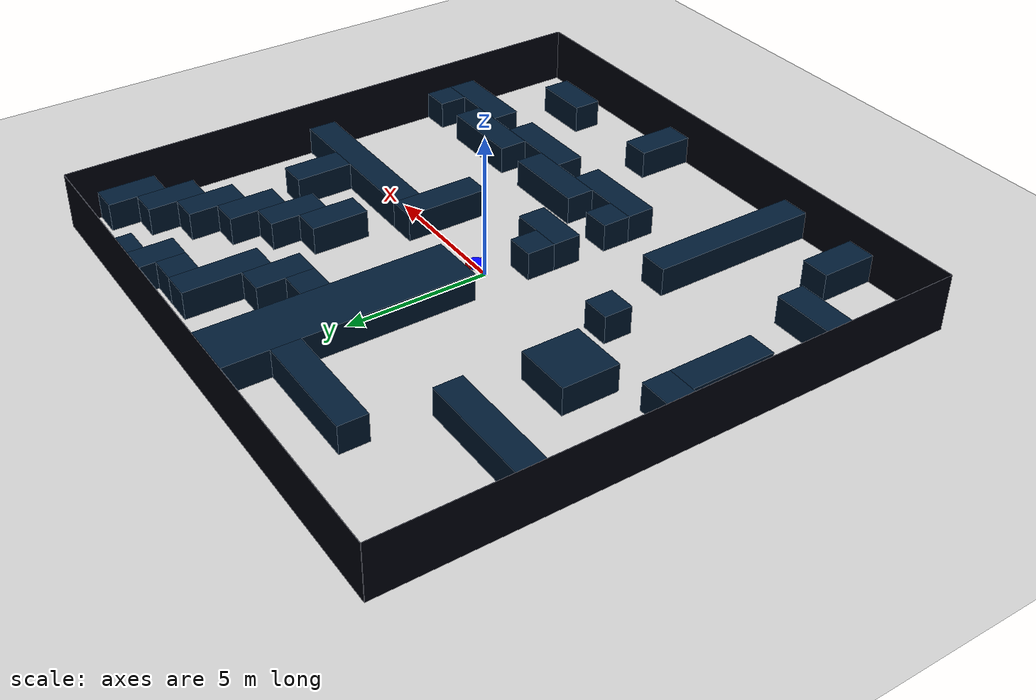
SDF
<?xml version="1.0"?>
<sdf version='1.8'>
    <world name='maze'>
        <plugin
            filename="gz-sim-sensors-system"
            name="gz::sim::systems::Sensors">
            <render_engine>ogre2</render_engine>
        </plugin>
        <physics name='1ms' type='ignored'>
            <max_step_size>0.003</max_step_size>
            <real_time_factor>1</real_time_factor>
            <real_time_update_rate>1000</real_time_update_rate>
        </physics>
        <plugin name='gz::sim::systems::Physics' filename='gz-sim-physics-system' />
        <plugin name='gz::sim::systems::UserCommands' filename='gz-sim-user-commands-system' />
        <plugin name='gz::sim::systems::SceneBroadcaster' filename='gz-sim-scene-broadcaster-system' />
        <plugin name='gz::sim::systems::Contact' filename='gz-sim-contact-system' />
        <light name='sun' type='directional'>
            <cast_shadows>1</cast_shadows>
            <pose>0 0 10 0 -0 0</pose>
            <diffuse>0.8 0.8 0.8 1</diffuse>
            <specular>0.2 0.2 0.2 1</specular>
            <attenuation>
                <range>1000</range>
                <constant>0.90000000000000002</constant>
                <linear>0.01</linear>
                <quadratic>0.001</quadratic>
            </attenuation>
            <direction>-0.5 0.1 -0.9</direction>
            <spot>
                <inner_angle>0</inner_angle>
                <outer_angle>0</outer_angle>
                <falloff>0</falloff>
            </spot>
        </light>
        <gravity>0 0 -9.8</gravity>
        <magnetic_field>6e-06 2.3e-05 -4.2e-05</magnetic_field>
        <atmosphere type='adiabatic' />
        <scene>
            <ambient>0.4 0.4 0.4 1</ambient>
            <background>0.7 0.7 0.7 1</background>
            <shadows>1</shadows>
        </scene>
        <model name='ground_plane'>
            <static>1</static>
            <link name='link'>
                <collision name='collision'>
                    <geometry>
                        <plane>
                            <normal>0 0 1</normal>
                            <size>100 100</size>
                        </plane>
                    </geometry>
                    <surface>
                        <friction>
                            <ode />
                        </friction>
                        <bounce />
                        <contact />
                    </surface>
                </collision>
                <visual name='visual'>
                    <geometry>
                        <plane>
                            <normal>0 0 1</normal>
                            <size>100 100</size>
                        </plane>
                    </geometry>
                    <material>
                        <ambient>0.8 0.8 0.8 1</ambient>
                        <diffuse>0.8 0.8 0.8 1</diffuse>
                        <specular>0.8 0.8 0.8 1</specular>
                    </material>
                    <plugin name='__default__' filename='__default__' />
                </visual>
            </link>
            <plugin name='__default__' filename='__default__' />
            <pose>0 0 0 0 -0 0</pose>
        </model>

        <model name='border'>
            <pose>0 0 1 0 0 0</pose>
            <static>true</static>
            <link name='wall1'>
                <pose>-10.005 0 0 0 0 0</pose>
                <static>true</static>
                <collision name='wall1_collision'>
                    <geometry>
                        <box>
                            <size>0.01 20 2</size>
                        </box>
                    </geometry>
                </collision>
                <visual name='wall1_visual'>
                    <geometry>
                        <box>
                            <size>0.01 20 2</size>
                        </box>
                    </geometry>
                    <material>
                        <ambient>0.1 0.1 0.1 1</ambient>
                        <diffuse>0 0.01 0.05 1</diffuse>
                        <specular>0 0.01 0.05 1</specular>
                    </material>
                </visual>
            </link>
            <link name='wall2'>
                <pose>10.005 0 0 0 0 0</pose>
                <static>true</static>
                <collision name='wall2_collision'>
                    <geometry>
                        <box>
                            <size>0.01 20 2</size>
                        </box>
                    </geometry>
                </collision>
                <visual name='wall2_visual'>
                    <geometry>
                        <box>
                            <size>0.01 20 2</size>
                        </box>
                    </geometry>
                    <material>
                        <ambient>0.1 0.1 0.1 1</ambient>
                        <diffuse>0 0.01 0.05 1</diffuse>
                        <specular>0 0.01 0.05 1</specular>
                    </material>
                </visual>
            </link>
            <link name='wall3'>
                <pose>0 10.005 0 0 0 0</pose>
                <static>true</static>
                <collision name='wall3_collision'>
                    <geometry>
                        <box>
                            <size>20 0.01 2</size>
                        </box>
                    </geometry>
                </collision>
                <visual name='wall3_visual'>
                    <geometry>
                        <box>
                            <size>20 0.01 2</size>
                        </box>
                    </geometry>
                    <material>
                        <ambient>0.1 0.1 0.1 1</ambient>
                        <diffuse>0 0.01 0.05 1</diffuse>
                        <specular>0 0.01 0.05 1</specular>
                    </material>
                </visual>
            </link>
            <link name='wall4'>
                <pose>0 -10.005 0 0 0 0</pose>
                <static>true</static>
                <collision name='wall4_collision'>
                    <geometry>
                        <box>
                            <size>20 0.01 2</size>
                        </box>
                    </geometry>
                    <material>
                        <ambient>0.1 0.1 0.1 1</ambient>
                        <diffuse>0 0.01 0.05 1</diffuse>
                        <specular>0 0.01 0.05 1</specular>
                    </material>
                </collision>
                <visual name='wall4_visual'>
                    <geometry>
                        <box>
                            <size>20 0.01 2</size>
                        </box>
                    </geometry>
                    <material>
                        <ambient>0.1 0.1 0.1 1</ambient>
                        <diffuse>0 0.01 0.05 1</diffuse>
                        <specular>0 0.01 0.05 1</specular>
                    </material>
                </visual>
            </link>
        </model>

        <model name='obstacles'>
            <pose>0 0 0.5 0 0 0</pose>
            <static>true</static>
            <link name='wall1'>
                <pose>-6.5 -9 0 0 0 0</pose>
                <static>true</static>
                <collision name='wall1_collision'>
                    <geometry>
                        <box>
                            <size>1 2 1</size>
                        </box>
                    </geometry>
                </collision>
                <visual name='wall1_visual'>
                    <geometry>
                        <box>
                            <size>1 2 1</size>
                        </box>
                    </geometry>
                    <material>
                        <ambient>0.1 0.1 0.1 1</ambient>
                        <diffuse>0 0.1 0.2 1</diffuse>
                        <specular>0 0.01 0.05 1</specular>
                    </material>
                </visual>
            </link>

            <link name='wall2'>
                <pose>-8.5 -6.5 0 0 0 0</pose>
                <static>true</static>
                <collision name='wall2_collision'>
                    <geometry>
                        <box>
                            <size>3 1 1</size>
                        </box>
                    </geometry>
                </collision>
                <visual name='wall2_visual'>
                    <geometry>
                        <box>
                            <size>3 1 1</size>
                        </box>
                    </geometry>
                    <material>
                        <ambient>0.1 0.1 0.1 1</ambient>
                        <diffuse>0 0.1 0.2 1</diffuse>
                        <specular>0 0.01 0.05 1</specular>
                    </material>
                </visual>
            </link>

            <link name='wall3'>
                <pose>-3.5 -7 0 0 0 0</pose>
                <static>true</static>
                <collision name='wall3_collision'>
                    <geometry>
                        <box>
                            <size>1 6 1</size>
                        </box>
                    </geometry>
                </collision>
                <visual name='wall3_visual'>
                    <geometry>
                        <box>
                            <size>1 6 1</size>
                        </box>
                    </geometry>
                    <material>
                        <ambient>0.1 0.1 0.1 1</ambient>
                        <diffuse>0 0.1 0.2 1</diffuse>
                        <specular>0 0.01 0.05 1</specular>
                    </material>
                </visual>
            </link>

            <link name='wall4'>
                <pose>2.5 -9 0 0 0 0</pose>
                <static>true</static>
                <collision name='wall4_collision'>
                    <geometry>
                        <box>
                            <size>1 2 1</size>
                        </box>
                    </geometry>
                </collision>
                <visual name='wall4_visual'>
                    <geometry>
                        <box>
                            <size>1 2 1</size>
                        </box>
                    </geometry>
                    <material>
                        <ambient>0.1 0.1 0.1 1</ambient>
                        <diffuse>0 0.1 0.2 1</diffuse>
                        <specular>0 0.01 0.05 1</specular>
                    </material>
                </visual>
            </link>

            <link name='wall5'>
                <pose>7 -8.5 0 0 0 0</pose>
                <static>true</static>
                <collision name='wall5_collision'>
                    <geometry>
                        <box>
                            <size>2 1 1</size>
                        </box>
                    </geometry>
                </collision>
                <visual name='wall5_visual'>
                    <geometry>
                        <box>
                            <size>2 1 1</size>
                        </box>
                    </geometry>
                    <material>
                        <ambient>0.1 0.1 0.1 1</ambient>
                        <diffuse>0 0.1 0.2 1</diffuse>
                        <specular>0 0.01 0.05 1</specular>
                    </material>
                </visual>
            </link>

            <link name='wall6'>
                <pose>-9 -0.5 0 0 0 0</pose>
                <static>true</static>
                <collision name='wall6_collision'>
                    <geometry>
                        <box>
                            <size>2 1 1</size>
                        </box>
                    </geometry>
                </collision>
                <visual name='wall6_visual'>
                    <geometry>
                        <box>
                            <size>2 1 1</size>
                        </box>
                    </geometry>
                    <material>
                        <ambient>0.1 0.1 0.1 1</ambient>
                        <diffuse>0 0.1 0.2 1</diffuse>
                        <specular>0 0.01 0.05 1</specular>
                    </material>
                </visual>
            </link>

            <link name='wall7'>
                <pose>-8.5 -2.5 0 0 0 0</pose>
                <static>true</static>
                <collision name='wall7_collision'>
                    <geometry>
                        <box>
                            <size>1 3 1</size>
                        </box>
                    </geometry>
                </collision>
                <visual name='wall7_visual'>
                    <geometry>
                        <box>
                            <size>1 3 1</size>
                        </box>
                    </geometry>
                    <material>
                        <ambient>0.1 0.1 0.1 1</ambient>
                        <diffuse>0 0.1 0.2 1</diffuse>
                        <specular>0 0.01 0.05 1</specular>
                    </material>
                </visual>
            </link>

            <link name='wall8'>
                <pose>-4.5 -1.5 0 0 0 0</pose>
                <static>true</static>
                <collision name='wall8_collision'>
                    <geometry>
                        <box>
                            <size>1 1 1</size>
                        </box>
                    </geometry>
                </collision>
                <visual name='wall8_visual'>
                    <geometry>
                        <box>
                            <size>1 1 1</size>
                        </box>
                    </geometry>
                    <material>
                        <ambient>0.1 0.1 0.1 1</ambient>
                        <diffuse>0 0.1 0.2 1</diffuse>
                        <specular>0 0.01 0.05 1</specular>
                    </material>
                </visual>
            </link>

            <link name='wall9'>
                <pose>-6 1 0 0 0 0</pose>
                <static>true</static>
                <collision name='wall9_collision'>
                    <geometry>
                        <box>
                            <size>2 2 1</size>
                        </box>
                    </geometry>
                </collision>
                <visual name='wall9_visual'>
                    <geometry>
                        <box>
                            <size>2 2 1</size>
                        </box>
                    </geometry>
                    <material>
                        <ambient>0.1 0.1 0.1 1</ambient>
                        <diffuse>0 0.1 0.2 1</diffuse>
                        <specular>0 0.01 0.05 1</specular>
                    </material>
                </visual>
            </link>

            <link name='wall10'>
                <pose>-7.5 4.5 0 0 0 0</pose>
                <static>true</static>
                <collision name='wall10_collision'>
                    <geometry>
                        <box>
                            <size>5 1 1</size>
                        </box>
                    </geometry>
                </collision>
                <visual name='wall10_visual'>
                    <geometry>
                        <box>
                            <size>5 1 1</size>
                        </box>
                    </geometry>
                    <material>
                        <ambient>0.1 0.1 0.1 1</ambient>
                        <diffuse>0 0.1 0.2 1</diffuse>
                        <specular>0 0.01 0.05 1</specular>
                    </material>
                </visual>
            </link>

            <link name='wall11'>
                <pose>-3 7.5 0 0 0 0</pose>
                <static>true</static>
                <collision name='wall11_collision'>
                    <geometry>
                        <box>
                            <size>4 1 1</size>
                        </box>
                    </geometry>
                </collision>
                <visual name='wall11_visual'>
                    <geometry>
                        <box>
                            <size>4 1 1</size>
                        </box>
                    </geometry>
                    <material>
                        <ambient>0.1 0.1 0.1 1</ambient>
                        <diffuse>0 0.1 0.2 1</diffuse>
                        <specular>0 0.01 0.05 1</specular>
                    </material>
                </visual>
            </link>
            <link name='wall12'>
                <pose>0 5.5 0 0 0 0</pose>
                <static>true</static>
                <collision name='wall12_collision'>
                    <geometry>
                        <box>
                            <size>2 9 1</size>
                        </box>
                    </geometry>
                </collision>
                <visual name='wall12_visual'>
                    <geometry>
                        <box>
                            <size>2 9 1</size>
                        </box>
                    </geometry>
                    <material>
                        <ambient>0.1 0.1 0.1 1</ambient>
                        <diffuse>0 0.1 0.2 1</diffuse>
                        <specular>0 0.01 0.05 1</specular>
                    </material>
                </visual>
            </link>

            <link name='wall13'>
                <pose>0 -2.5 0 0 0 0</pose>
                <static>true</static>
                <collision name='wall13_collision'>
                    <geometry>
                        <box>
                            <size>2 1 1</size>
                        </box>
                    </geometry>
                </collision>
                <visual name='wall13_visual'>
                    <geometry>
                        <box>
                            <size>2 1 1</size>
                        </box>
                    </geometry>
                    <material>
                        <ambient>0.1 0.1 0.1 1</ambient>
                        <diffuse>0 0.1 0.2 1</diffuse>
                        <specular>0 0.01 0.05 1</specular>
                    </material>
                </visual>
            </link>

            <link name='wall14'>
                <pose>-0.5 -1.5 0 0 0 0</pose>
                <static>true</static>
                <collision name='wall14_collision'>
                    <geometry>
                        <box>
                            <size>1 1 1</size>
                        </box>
                    </geometry>
                </collision>
                <visual name='wall14_visual'>
                    <geometry>
                        <box>
                            <size>1 1 1</size>
                        </box>
                    </geometry>
                    <material>
                        <ambient>0.1 0.1 0.1 1</ambient>
                        <diffuse>0 0.1 0.2 1</diffuse>
                        <specular>0 0.01 0.05 1</specular>
                    </material>
                </visual>
            </link>

            <link name='wall15'>
                <pose>-0.5 -4.5 0 0 0 0</pose>
                <static>true</static>
                <collision name='wall15_collision'>
                    <geometry>
                        <box>
                            <size>1 1 1</size>
                        </box>
                    </geometry>
                </collision>
                <visual name='wall15_visual'>
                    <geometry>
                        <box>
                            <size>1 1 1</size>
                        </box>
                    </geometry>
                    <material>
                        <ambient>0.1 0.1 0.1 1</ambient>
                        <diffuse>0 0.1 0.2 1</diffuse>
                        <specular>0 0.01 0.05 1</specular>
                    </material>
                </visual>
            </link>

            <link name='wall16'>
                <pose>0.5 -5.5 0 0 0 0</pose>
                <static>true</static>
                <collision name='wall16_collision'>
                    <geometry>
                        <box>
                            <size>3 1 1</size>
                        </box>
                    </geometry>
                </collision>
                <visual name='wall16_visual'>
                    <geometry>
                        <box>
                            <size>3 1 1</size>
                        </box>
                    </geometry>
                    <material>
                        <ambient>0.1 0.1 0.1 1</ambient>
                        <diffuse>0 0.1 0.2 1</diffuse>
                        <specular>0 0.01 0.05 1</specular>
                    </material>
                </visual>
            </link>

            <link name='wall17'>
                <pose>2.5 -4.5 0 0 0 0</pose>
                <static>true</static>
                <collision name='wall17_collision'>
                    <geometry>
                        <box>
                            <size>3 1 1</size>
                        </box>
                    </geometry>
                </collision>
                <visual name='wall17_visual'>
                    <geometry>
                        <box>
                            <size>3 1 1</size>
                        </box>
                    </geometry>
                    <material>
                        <ambient>0.1 0.1 0.1 1</ambient>
                        <diffuse>0 0.1 0.2 1</diffuse>
                        <specular>0 0.01 0.05 1</specular>
                    </material>
                </visual>
            </link>

            <link name='wall18'>
                <pose>4.5 -5.5 0 0 0 0</pose>
                <static>true</static>
                <collision name='wall18_collision'>
                    <geometry>
                        <box>
                            <size>3 1 1</size>
                        </box>
                    </geometry>
                </collision>
                <visual name='wall18_visual'>
                    <geometry>
                        <box>
                            <size>3 1 1</size>
                        </box>
                    </geometry>
                    <material>
                        <ambient>0.1 0.1 0.1 1</ambient>
                        <diffuse>0 0.1 0.2 1</diffuse>
                        <specular>0 0.01 0.05 1</specular>
                    </material>
                </visual>
            </link>

            <link name='wall19'>
                <pose>6.5 -4.5 0 0 0 0</pose>
                <static>true</static>
                <collision name='wall19_collision'>
                    <geometry>
                        <box>
                            <size>3 1 1</size>
                        </box>
                    </geometry>
                </collision>
                <visual name='wall19_visual'>
                    <geometry>
                        <box>
                            <size>3 1 1</size>
                        </box>
                    </geometry>
                    <material>
                        <ambient>0.1 0.1 0.1 1</ambient>
                        <diffuse>0 0.1 0.2 1</diffuse>
                        <specular>0 0.01 0.05 1</specular>
                    </material>
                </visual>
            </link>

            <link name='wall20'>
                <pose>8.5 -5.5 0 0 0 0</pose>
                <static>true</static>
                <collision name='wall20_collision'>
                    <geometry>
                        <box>
                            <size>3 1 1</size>
                        </box>
                    </geometry>
                </collision>
                <visual name='wall20_visual'>
                    <geometry>
                        <box>
                            <size>3 1 1</size>
                        </box>
                    </geometry>
                    <material>
                        <ambient>0.1 0.1 0.1 1</ambient>
                        <diffuse>0 0.1 0.2 1</diffuse>
                        <specular>0 0.01 0.05 1</specular>
                    </material>
                </visual>
            </link>

            <link name='wall21'>
                <pose>9.5 -4.5 0 0 0 0</pose>
                <static>true</static>
                <collision name='wall21_collision'>
                    <geometry>
                        <box>
                            <size>1 1 1</size>
                        </box>
                    </geometry>
                </collision>
                <visual name='wall21_visual'>
                    <geometry>
                        <box>
                            <size>1 1 1</size>
                        </box>
                    </geometry>
                    <material>
                        <ambient>0.1 0.1 0.1 1</ambient>
                        <diffuse>0 0.1 0.2 1</diffuse>
                        <specular>0 0.01 0.05 1</specular>
                    </material>
                </visual>
            </link>

            <link name='wall22'>
                <pose>3.5 -0.5 0 0 0 0</pose>
                <static>true</static>
                <collision name='wall22_collision'>
                    <geometry>
                        <box>
                            <size>1 3 1</size>
                        </box>
                    </geometry>
                </collision>
                <visual name='wall22_visual'>
                    <geometry>
                        <box>
                            <size>1 3 1</size>
                        </box>
                    </geometry>
                    <material>
                        <ambient>0.1 0.1 0.1 1</ambient>
                        <diffuse>0 0.1 0.2 1</diffuse>
                        <specular>0 0.01 0.05 1</specular>
                    </material>
                </visual>
            </link>

            <link name='wall23'>
                <pose>7 0.5 0 0 0 0</pose>
                <static>true</static>
                <collision name='wall23_collision'>
                    <geometry>
                        <box>
                            <size>6 1 1</size>
                        </box>
                    </geometry>
                </collision>
                <visual name='wall23_visual'>
                    <geometry>
                        <box>
                            <size>6 1 1</size>
                        </box>
                    </geometry>
                    <material>
                        <ambient>0.1 0.1 0.1 1</ambient>
                        <diffuse>0 0.1 0.2 1</diffuse>
                        <specular>0 0.01 0.05 1</specular>
                    </material>
                </visual>
            </link>

            <link name='wall24'>
                <pose>7.5 2 0 0 0 0</pose>
                <static>true</static>
                <collision name='wall24_collision'>
                    <geometry>
                        <box>
                            <size>1 2 1</size>
                        </box>
                    </geometry>
                </collision>
                <visual name='wall24_visual'>
                    <geometry>
                        <box>
                            <size>1 2 1</size>
                        </box>
                    </geometry>
                    <material>
                        <ambient>0.1 0.1 0.1 1</ambient>
                        <diffuse>0 0.1 0.2 1</diffuse>
                        <specular>0 0.01 0.05 1</specular>
                    </material>
                </visual>
            </link>

            <link name='wall25'>
                <pose>1.5 5.5 0 0 0 0</pose>
                <static>true</static>
                <collision name='wall25_collision'>
                    <geometry>
                        <box>
                            <size>1 1 1</size>
                        </box>
                    </geometry>
                </collision>
                <visual name='wall25_visual'>
                    <geometry>
                        <box>
                            <size>1 1 1</size>
                        </box>
                    </geometry>
                    <material>
                        <ambient>0.1 0.1 0.1 1</ambient>
                        <diffuse>0 0.1 0.2 1</diffuse>
                        <specular>0 0.01 0.05 1</specular>
                    </material>
                </visual>
            </link>

            <link name='wall26'>
                <pose>2.5 6 0 0 0 0</pose>
                <static>true</static>
                <collision name='wall26_collision'>
                    <geometry>
                        <box>
                            <size>1 2 1</size>
                        </box>
                    </geometry>
                </collision>
                <visual name='wall26_visual'>
                    <geometry>
                        <box>
                            <size>1 2 1</size>
                        </box>
                    </geometry>
                    <material>
                        <ambient>0.1 0.1 0.1 1</ambient>
                        <diffuse>0 0.1 0.2 1</diffuse>
                        <specular>0 0.01 0.05 1</specular>
                    </material>
                </visual>
            </link>

            <link name='wall27'>
                <pose>3.5 7.5 0 0 0 0</pose>
                <static>true</static>
                <collision name='wall27_collision'>
                    <geometry>
                        <box>
                            <size>1 3 1</size>
                        </box>
                    </geometry>
                </collision>
                <visual name='wall27_visual'>
                    <geometry>
                        <box>
                            <size>1 3 1</size>
                        </box>
                    </geometry>
                    <material>
                        <ambient>0.1 0.1 0.1 1</ambient>
                        <diffuse>0 0.1 0.2 1</diffuse>
                        <specular>0 0.01 0.05 1</specular>
                    </material>
                </visual>
            </link>

            <link name='wall28'>
                <pose>4.5 8.5 0 0 0 0</pose>
                <static>true</static>
                <collision name='wall28_collision'>
                    <geometry>
                        <box>
                            <size>1 1 1</size>
                        </box>
                    </geometry>
                </collision>
                <visual name='wall28_visual'>
                    <geometry>
                        <box>
                            <size>1 1 1</size>
                        </box>
                    </geometry>
                    <material>
                        <ambient>0.1 0.1 0.1 1</ambient>
                        <diffuse>0 0.1 0.2 1</diffuse>
                        <specular>0 0.01 0.05 1</specular>
                    </material>
                </visual>
            </link>

            <link name='wall29'>
                <pose>5.5 9 0 0 0 0</pose>
                <static>true</static>
                <collision name='wall29_collision'>
                    <geometry>
                        <box>
                            <size>1 2 1</size>
                        </box>
                    </geometry>
                </collision>
                <visual name='wall29_visual'>
                    <geometry>
                        <box>
                            <size>1 2 1</size>
                        </box>
                    </geometry>
                    <material>
                        <ambient>0.1 0.1 0.1 1</ambient>
                        <diffuse>0 0.1 0.2 1</diffuse>
                        <specular>0 0.01 0.05 1</specular>
                    </material>
                </visual>
            </link>

            <link name='wall30'>
                <pose>6.5 9.5 0 0 0 0</pose>
                <static>true</static>
                <collision name='wall30_collision'>
                    <geometry>
                        <box>
                            <size>1 1 1</size>
                        </box>
                    </geometry>
                </collision>
                <visual name='wall30_visual'>
                    <geometry>
                        <box>
                            <size>1 1 1</size>
                        </box>
                    </geometry>
                    <material>
                        <ambient>0.1 0.1 0.1 1</ambient>
                        <diffuse>0 0.1 0.2 1</diffuse>
                        <specular>0 0.01 0.05 1</specular>
                    </material>
                </visual>
            </link>

            <link name='wall31'>
                <pose>4.5 3 0 0 0 0</pose>
                <static>true</static>
                <collision name='wall31_collision'>
                    <geometry>
                        <box>
                            <size>1 2 1</size>
                        </box>
                    </geometry>
                </collision>
                <visual name='wall31_visual'>
                    <geometry>
                        <box>
                            <size>1 2 1</size>
                        </box>
                    </geometry>
                    <material>
                        <ambient>0.1 0.1 0.1 1</ambient>
                        <diffuse>0 0.1 0.2 1</diffuse>
                        <specular>0 0.01 0.05 1</specular>
                    </material>
                </visual>
            </link>

            <link name='wall32'>
                <pose>5.5 4 0 0 0 0</pose>
                <static>true</static>
                <collision name='wall32_collision'>
                    <geometry>
                        <box>
                            <size>1 2 1</size>
                        </box>
                    </geometry>
                </collision>
                <visual name='wall32_visual'>
                    <geometry>
                        <box>
                            <size>1 2 1</size>
                        </box>
                    </geometry>
                    <material>
                        <ambient>0.1 0.1 0.1 1</ambient>
                        <diffuse>0 0.1 0.2 1</diffuse>
                        <specular>0 0.01 0.05 1</specular>
                    </material>
                </visual>
            </link>

            <link name='wall33'>
                <pose>6.5 5 0 0 0 0</pose>
                <static>true</static>
                <collision name='wall33_collision'>
                    <geometry>
                        <box>
                            <size>1 2 1</size>
                        </box>
                    </geometry>
                </collision>
                <visual name='wall33_visual'>
                    <geometry>
                        <box>
                            <size>1 2 1</size>
                        </box>
                    </geometry>
                    <material>
                        <ambient>0.1 0.1 0.1 1</ambient>
                        <diffuse>0 0.1 0.2 1</diffuse>
                        <specular>0 0.01 0.05 1</specular>
                    </material>
                </visual>
            </link>

            <link name='wall34'>
                <pose>7.5 6 0 0 0 0</pose>
                <static>true</static>
                <collision name='wall34_collision'>
                    <geometry>
                        <box>
                            <size>1 2 1</size>
                        </box>
                    </geometry>
                </collision>
                <visual name='wall34_visual'>
                    <geometry>
                        <box>
                            <size>1 2 1</size>
                        </box>
                    </geometry>
                    <material>
                        <ambient>0.1 0.1 0.1 1</ambient>
                        <diffuse>0 0.1 0.2 1</diffuse>
                        <specular>0 0.01 0.05 1</specular>
                    </material>
                </visual>
            </link>

            <link name='wall35'>
                <pose>8.5 7 0 0 0 0</pose>
                <static>true</static>
                <collision name='wall35_collision'>
                    <geometry>
                        <box>
                            <size>1 2 1</size>
                        </box>
                    </geometry>
                </collision>
                <visual name='wall35_visual'>
                    <geometry>
                        <box>
                            <size>1 2 1</size>
                        </box>
                    </geometry>
                    <material>
                        <ambient>0.1 0.1 0.1 1</ambient>
                        <diffuse>0 0.1 0.2 1</diffuse>
                        <specular>0 0.01 0.05 1</specular>
                    </material>
                </visual>
            </link>

            <link name='wall36'>
                <pose>9.5 8 0 0 0 0</pose>
                <static>true</static>
                <collision name='wall36_collision'>
                    <geometry>
                        <box>
                            <size>1 2 1</size>
                        </box>
                    </geometry>
                </collision>
                <visual name='wall36_visual'>
                    <geometry>
                        <box>
                            <size>1 2 1</size>
                        </box>
                    </geometry>
                    <material>
                        <ambient>0.1 0.1 0.1 1</ambient>
                        <diffuse>0 0.1 0.2 1</diffuse>
                        <specular>0 0.01 0.05 1</specular>
                    </material>
                </visual>
            </link>
        </model>
        <model name='vehicle_blue' canonical_link='chassis'>
            <pose relative_to='world'>0 0 0 0 0 0</pose>
            <link name='chassis'>
                <pose relative_to='__model__'>0.5 0 0.15 0 0 0</pose>
                <sensor name='gpu_lidar' type='gpu_lidar'>"
                    <pose relative_to='lidar_frame'>0 0 0 0 0 0</pose>
                    <topic>lidar</topic>
                    <update_rate>10</update_rate>
                    <ray>
                        <scan>
                            <horizontal>
                                <samples>640</samples>
                                <resolution>1</resolution>
                                <min_angle>-1.396263</min_angle>
                                <max_angle>1.396263</max_angle>
                            </horizontal>
                            <vertical>
                                <samples>1</samples>
                                <resolution>0.01</resolution>
                                <min_angle>0</min_angle>
                                <max_angle>0</max_angle>
                            </vertical>
                        </scan>
                        <range>
                            <min>0.08</min>
                            <max>10.0</max>
                            <resolution>0.01</resolution>
                        </range>
                    </ray>
                    <always_on>1</always_on>
                    <visualize>true</visualize>
                </sensor>
                <inertial> <!--inertial
                    properties of the link mass, inertia matix-->
                    <mass>1.14395</mass>
                    <inertia>
                        <ixx>0.095329</ixx>
                        <ixy>0</ixy>
                        <ixz>0</ixz>
                        <iyy>0.381317</iyy>
                        <iyz>0</iyz>
                        <izz>0.476646</izz>
                    </inertia>
                </inertial>
                <visual name='visual'>
                    <geometry>
                        <cylinder>
                            <radius>0.3</radius>
                            <length>0.1</length>
                        </cylinder>
                    </geometry>
                    <!--let's
                    add color to our link-->
                    <material>
                        <ambient>0.0 0.0 1.0 1</ambient>
                        <diffuse>0.0 0.0 1.0 1</diffuse>
                        <specular>0.0 0.0 1.0 1</specular>
                    </material>
                </visual>
                <collision name='collision'>
                    <geometry>
                        <cylinder>
                            <radius>0.3</radius>
                            <length>0.1</length>
                        </cylinder>
                    </geometry>
                </collision>
            </link>

            <link name='left_wheel'>
                <pose relative_to="chassis">0 0.3 0 -1.5707 0 0</pose>
                <inertial>
                    <mass>1</mass>
                    <inertia>
                        <ixx>0.043333</ixx>
                        <ixy>0</ixy>
                        <ixz>0</ixz>
                        <iyy>0.043333</iyy>
                        <iyz>0</iyz>
                        <izz>0.08</izz>
                    </inertia>
                </inertial>
                <visual name='visual'>
                    <geometry>
                        <cylinder>
                            <radius>0.15</radius>
                            <length>0.05</length>
                        </cylinder>
                    </geometry>
                    <material>
                        <ambient>1.0 0.0 0.0 1</ambient>
                        <diffuse>1.0 0.0 0.0 1</diffuse>
                        <specular>1.0 0.0 0.0 1</specular>
                    </material>
                </visual>
                <collision name='collision'>
                    <geometry>
                        <cylinder>
                            <radius>0.15</radius>
                            <length>0.05</length>
                        </cylinder>
                    </geometry>
                </collision>
            </link>
            <!--The
            same as left wheel but with different position-->
            <link name='right_wheel'>
                <pose relative_to="chassis">0 -0.3 0 -1.5707 0 0</pose> <!--angles
                are in radian-->
                <inertial>
                    <mass>1</mass>
                    <inertia>
                        <ixx>0.043333</ixx>
                        <ixy>0</ixy>
                        <ixz>0</ixz>
                        <iyy>0.043333</iyy>
                        <iyz>0</iyz>
                        <izz>0.08</izz>
                    </inertia>
                </inertial>
                <visual name='visual'>
                    <geometry>
                        <cylinder>
                            <radius>0.15</radius>
                            <length>0.05</length>
                        </cylinder>
                    </geometry>
                    <material>
                        <ambient>1.0 0.0 0.0 1</ambient>
                        <diffuse>1.0 0.0 0.0 1</diffuse>
                        <specular>1.0 0.0 0.0 1</specular>
                    </material>
                </visual>
                <collision name='collision'>
                    <geometry>
                        <cylinder>
                            <radius>0.15</radius>
                            <length>0.05</length>
                        </cylinder>
                    </geometry>
                </collision>
            </link>
            <frame name="caster_front_frame" attached_to='chassis'>
                <pose>-0.2 0 -0.075 0 0 0</pose>
            </frame>
            <!--caster_front
            wheel-->
            <link name='caster_front'>
                <pose relative_to='caster_front_frame' />
                <inertial>
                    <mass>1</mass>
                    <inertia>
                        <ixx>0.016</ixx>
                        <ixy>0</ixy>
                        <ixz>0</ixz>
                        <iyy>0.016</iyy>
                        <iyz>0</iyz>
                        <izz>0.016</izz>
                    </inertia>
                </inertial>
                <visual name='visual'>
                    <geometry>
                        <sphere>
                            <radius>0.075</radius>
                        </sphere>
                    </geometry>
                    <material>
                        <ambient>0.0 1 0.0 1</ambient>
                        <diffuse>0.0 1 0.0 1</diffuse>
                        <specular>0.0 1 0.0 1</specular>
                    </material>
                </visual>
                <collision name='collision'>
                    <geometry>
                        <sphere>
                            <radius>0.075</radius>
                        </sphere>
                    </geometry>
                </collision>
            </link>
            <frame name="caster_back_frame" attached_to='chassis'>
                <pose>0.2 0 -0.075 0 0 0</pose>
            </frame>
            <!--caster_back
            wheel-->
            <link name='caster_back'>
                <pose relative_to='caster_back_frame' />
                <inertial>
                    <mass>1</mass>
                    <inertia>
                        <ixx>0.016</ixx>
                        <ixy>0</ixy>
                        <ixz>0</ixz>
                        <iyy>0.016</iyy>
                        <iyz>0</iyz>
                        <izz>0.016</izz>
                    </inertia>
                </inertial>
                <visual name='visual'>
                    <geometry>
                        <sphere>
                            <radius>0.075</radius>
                        </sphere>
                    </geometry>
                    <material>
                        <ambient>0.0 1 0.0 1</ambient>
                        <diffuse>0.0 1 0.0 1</diffuse>
                        <specular>0.0 1 0.0 1</specular>
                    </material>
                </visual>
                <collision name='collision'>
                    <geometry>
                        <sphere>
                            <radius>0.075</radius>
                        </sphere>
                    </geometry>
                </collision>
            </link>
            <joint name='left_wheel_joint' type='revolute'>
                <pose relative_to='left_wheel' />
                <parent>chassis</parent>
                <child>left_wheel</child>
                <axis>
                    <xyz expressed_in='__model__'>0 1 0</xyz> <!--can
                    be defined as any frame or even arbitrary frames-->
                    <limit>
                        <lower>-1.79769e+308</lower>    <!--negative
                        infinity-->
                        <upper>1.79769e+308</upper>     <!--positive
                        infinity-->
                    </limit>
                </axis>
            </joint>
            <joint name='right_wheel_joint' type='revolute'>
                <pose relative_to='right_wheel' />
                <parent>chassis</parent>
                <child>right_wheel</child>
                <axis>
                    <xyz expressed_in='__model__'>0 1 0</xyz>
                    <limit>
                        <lower>-1.79769e+308</lower>    <!--negative
                        infinity-->
                        <upper>1.79769e+308</upper>     <!--positive
                        infinity-->
                    </limit>
                </axis>
            </joint>
            <joint name='caster_front_wheel' type='ball'>
                <parent>chassis</parent>
                <child>caster_front</child>
            </joint>
            <joint name='caster_back_wheel' type='ball'>
                <parent>chassis</parent>
                <child>caster_back</child>
            </joint>
            <plugin
                filename="gz-sim-diff-drive-system"
                name="gz::sim::systems::DiffDrive">
                <left_joint>left_wheel_joint</left_joint>
                <right_joint>right_wheel_joint</right_joint>
                <wheel_separation>1.2</wheel_separation>
                <wheel_radius>0.4</wheel_radius>
                <odom_publish_frequency>5</odom_publish_frequency>
                <topic>cmd_vel</topic>
                <odom_topic>vehicle_blue/chassis/odom</odom_topic>
                <tf_topic>vehicle_blue/chassis/tf</tf_topic>
            </plugin>
            <frame name="lidar_frame" attached_to='chassis'>
                <pose>0.0 0 0.5 0 0 0</pose>
            </frame>
        </model>
    </world>
</sdf>
